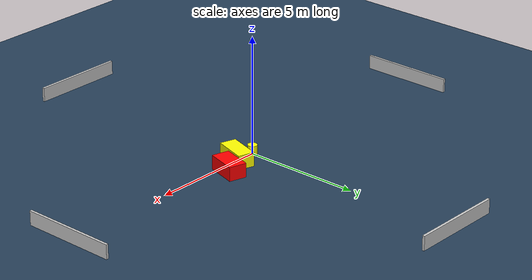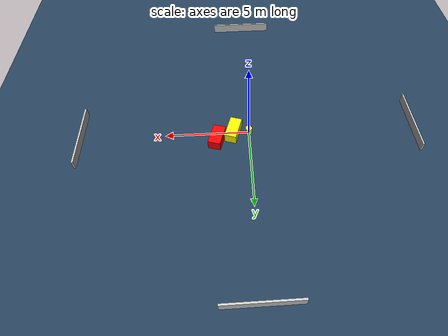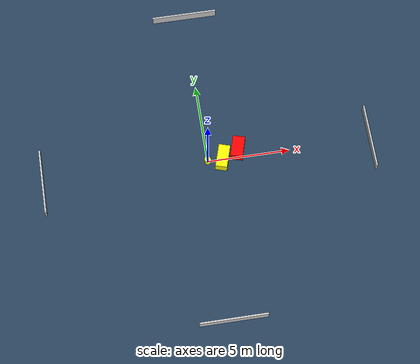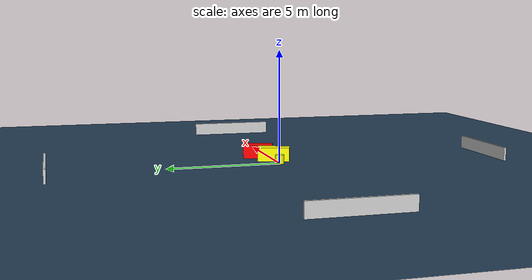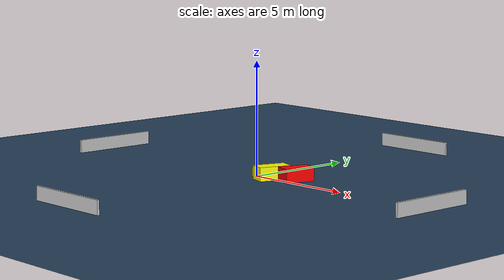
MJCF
<?xml version="1.0" ?>
<mujoco model="generated_environment">
  <option timestep="0.01" integrator="RK4" cone="elliptic"/>
  <default>
    <geom density="1"/>
  </default>
  <asset>
    <texture builtin="gradient" height="3072" name="skybox" rgb1="0.3 0.5 0.7" rgb2="0 0 0" type="skybox" width="512"/>
    <texture builtin="checker" height="300" name="groundplane" rgb1="0.2 0.3 0.4" rgb2="0.1 0.2 0.3" type="2d" width="300"/>
    <material name="groundplane" reflectance="0.2" texrepeat="5 5" texture="groundplane"/>
  </asset>
  <worldbody>
    <light dir="0 0 -1" directional="true" pos="0 0 1.5"/>
    <geom condim="3" friction="0.5 0.005 0.001" material="groundplane" name="floor" pos="0 0 0" size="0 0 0.05" type="plane"/>
    <body name="walls">
      <geom name="wall_1" condim="4" pos="-10.0 0.0 0.3" rgba="0.800000011920929 0.800000011920929 0.800000011920929 1.0" size="0.05 2.0 0.3" type="box"/>
      <geom name="wall_2" condim="4" pos="10.0 0.0 0.3" rgba="0.800000011920929 0.800000011920929 0.800000011920929 1.0" size="0.05 2.0 0.3" type="box"/>
      <geom name="wall_3" condim="4" pos="0.0 -10.0 0.3" rgba="0.800000011920929 0.800000011920929 0.800000011920929 1.0" size="2.0 0.05 0.3" type="box"/>
      <geom name="wall_4" condim="4" pos="0.0 10.0 0.3" rgba="0.800000011920929 0.800000011920929 0.800000011920929 1.0" size="2.0 0.05 0.3" type="box"/>
    </body>
    <body name="robot">
      <joint name="joint_x" type="slide" pos="0 0 0" axis="1 0 0"/>
      <joint name="joint_y" type="slide" pos="0 0 0" axis="0 1 0"/>
      <geom name="robot" type="cylinder" pos="0.0 0.0 0.2" size="0.2 0.2 0.0" mass="5.0" friction="1.0 0.005 0.0001" condim="4" rgba="1.0 1.0 0.0 1.0"/>
    </body>
    <body name="obstacle_1_movable">
      <geom name="obstacle_1_movable" condim="4" pos="0.9327786479742738 0.019116890378268973 0.3" euler="0 0 162.5204812415731" friction="0.0 0.005 0.001" rgba="1.0 1.0 0.0 1.0" size="0.3508912976561578 0.7148171178205658 0.3" type="box" mass="0.1"/>
      <joint type="free"/>
    </body>
    <body name="obstacle_2_static">
      <geom name="obstacle_2_static" condim="4" pos="1.9203466832843414 0.49802840972213325 0.3" euler="0 0 73.69464700977449" friction="0.0 0.005 0.001" rgba="1.0 0.0 0.0 1.0" size="0.6580842701207457 0.3747629632235894 0.3" type="box"/>
    </body>
  </worldbody>
  <actuator>
    <motor name="actuator_x" joint="joint_x" gear="1" ctrlrange="-1 1"/>
    <motor name="actuator_y" joint="joint_y" gear="1" ctrlrange="-1 1"/>
  </actuator>
</mujoco>
